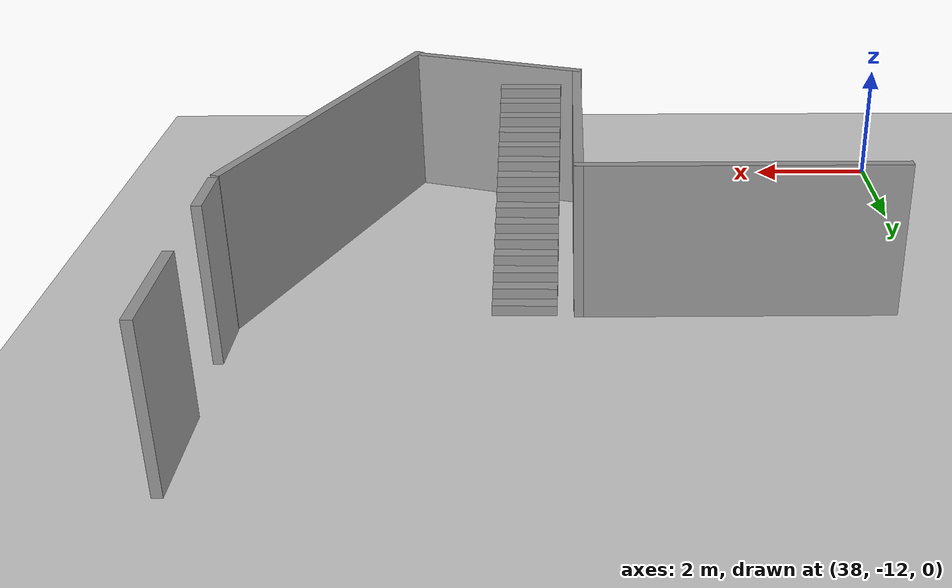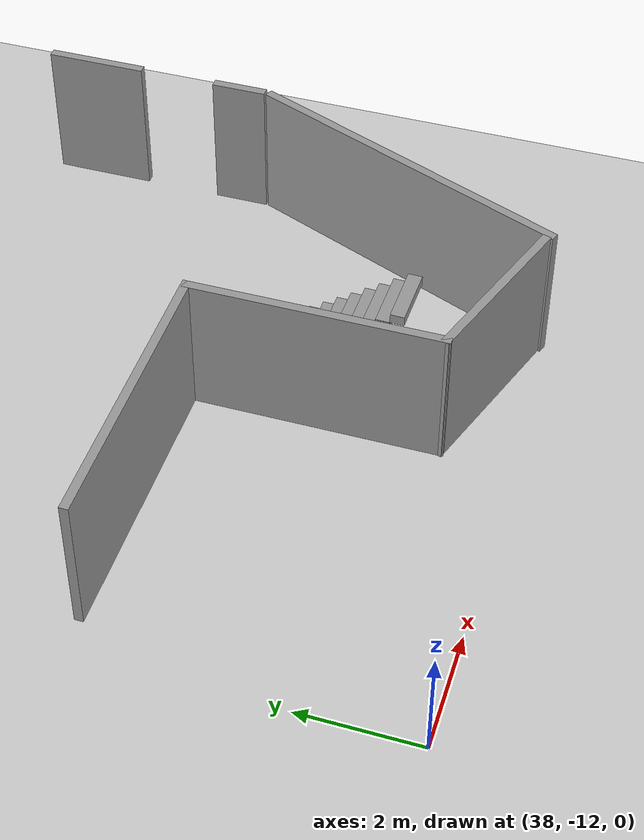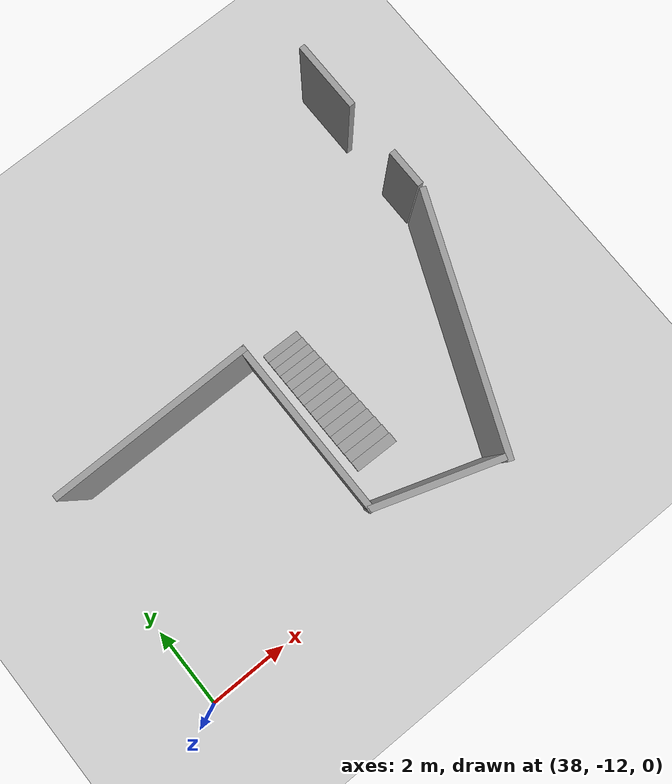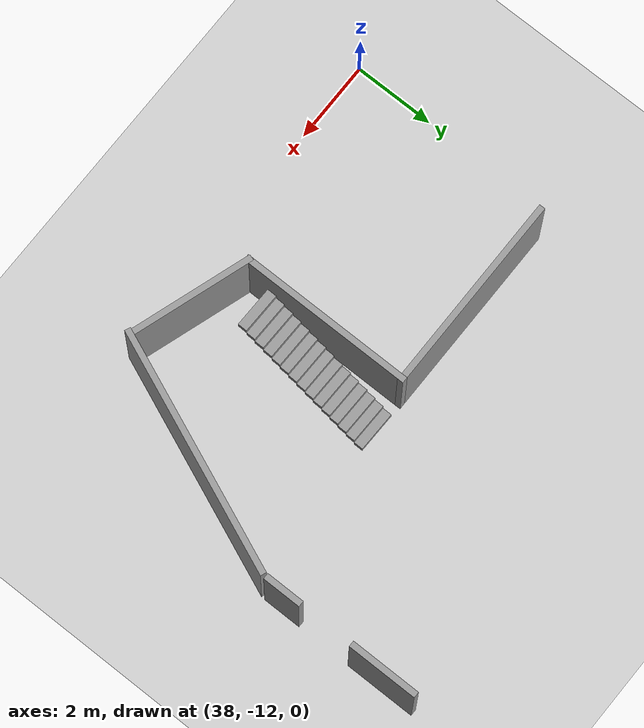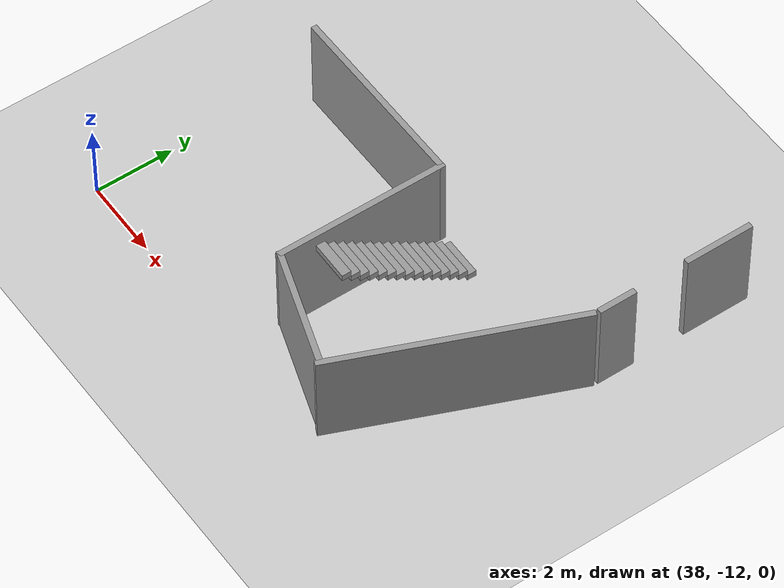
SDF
<sdf version="1.6">
 <world name="default">
  <model name="ground_plane">
   <static>1</static>
   <link name="link">
    <collision name="collision">
     <geometry><plane><normal>0 0 1</normal><size>100 100</size></plane></geometry>
     <surface><friction><ode><mu>100</mu><mu2>50</mu2></ode></friction></surface>
    </collision>
    <visual name="visual">
     <cast_shadows>0</cast_shadows>
     <geometry><plane><normal>0 0 1</normal><size>100 100</size></plane></geometry>
     <material>
      <script><uri>file://media/materials/scripts/gazebo.material</uri><name>Gazebo/Grey</name></script>
     </material>
    </visual>
   </link>
  </model>
  <model name="200A">
   <link name="Wall_141">
    <pose>3.51189 -2.33969 0 0 0 -1.96473</pose>
    <visual name="Wall_141_Visual">
     <pose>0 0 1.25 0 -0 0</pose>
     <geometry><box><size>6.096 0.15 2.5</size></box></geometry>
     <material>
      <script><uri>file://media/materials/scripts/gazebo.material</uri><name>Gazebo/Grey</name></script>
      <ambient>1 1 1 1</ambient>
      <shader type="pixel"/>
     </material>
     <meta><layer>0</layer></meta>
    </visual>
    <collision name="Wall_141_Collision">
     <pose>0 0 1.25 0 -0 0</pose>
     <geometry><box><size>6.096 0.15 2.5</size></box></geometry>
     <surface>
      <friction>
       <ode><mu>1</mu><mu2>1</mu2><fdir1>0 0 0</fdir1><slip1>0</slip1><slip2>0</slip2></ode>
       <torsional>
        <coefficient>1</coefficient>
        <patch_radius>0</patch_radius>
        <surface_radius>0</surface_radius>
        <use_patch_radius>1</use_patch_radius>
        <ode><slip>0</slip></ode>
       </torsional>
      </friction>
      <bounce><restitution_coefficient>0</restitution_coefficient><threshold>1e+06</threshold></bounce>
      <contact>
       <collide_without_contact>0</collide_without_contact>
       <collide_without_contact_bitmask>1</collide_without_contact_bitmask>
       <collide_bitmask>1</collide_bitmask>
       <ode>
        <soft_cfm>0</soft_cfm>
        <soft_erp>0.2</soft_erp>
        <kp>1e+13</kp>
        <kd>1</kd>
        <max_vel>0.01</max_vel>
        <min_depth>0</min_depth>
       </ode>
       <bullet>
        <split_impulse>1</split_impulse>
        <split_impulse_penetration_threshold>-0.01</split_impulse_penetration_threshold>
        <soft_cfm>0</soft_cfm>
        <soft_erp>0.2</soft_erp>
        <kp>1e+13</kp>
        <kd>1</kd>
       </bullet>
      </contact>
     </surface>
    </collision>
   </link>
   <link name="Wall_142">
    <pose>0.8825 -4.54916 0 0 -0 2.82195</pose>
    <visual name="Wall_142_Visual">
     <pose>0 0 1.25 0 -0 0</pose>
     <geometry><box><size>3.048 0.15 2.5</size></box></geometry>
     <material>
      <script><uri>file://media/materials/scripts/gazebo.material</uri><name>Gazebo/Grey</name></script>
      <ambient>1 1 1 1</ambient>
      <shader type="pixel"/>
     </material>
     <meta><layer>0</layer></meta>
    </visual>
    <collision name="Wall_142_Collision">
     <pose>0 0 1.25 0 -0 0</pose>
     <geometry><box><size>3.048 0.15 2.5</size></box></geometry>
     <surface>
      <friction>
       <ode><mu>1</mu><mu2>1</mu2><fdir1>0 0 0</fdir1><slip1>0</slip1><slip2>0</slip2></ode>
       <torsional>
        <coefficient>1</coefficient>
        <patch_radius>0</patch_radius>
        <surface_radius>0</surface_radius>
        <use_patch_radius>1</use_patch_radius>
        <ode><slip>0</slip></ode>
       </torsional>
      </friction>
      <bounce><restitution_coefficient>0</restitution_coefficient><threshold>1e+06</threshold></bounce>
      <contact>
       <collide_without_contact>0</collide_without_contact>
       <collide_without_contact_bitmask>1</collide_without_contact_bitmask>
       <collide_bitmask>1</collide_bitmask>
       <ode>
        <soft_cfm>0</soft_cfm>
        <soft_erp>0.2</soft_erp>
        <kp>1e+13</kp>
        <kd>1</kd>
        <max_vel>0.01</max_vel>
        <min_depth>0</min_depth>
       </ode>
       <bullet>
        <split_impulse>1</split_impulse>
        <split_impulse_penetration_threshold>-0.01</split_impulse_penetration_threshold>
        <soft_cfm>0</soft_cfm>
        <soft_erp>0.2</soft_erp>
        <kp>1e+13</kp>
        <kd>1</kd>
       </bullet>
      </contact>
     </surface>
    </collision>
   </link>
   <link name="Wall_143">
    <pose>-0.493195 -1.98532 0 0 -0 1.5708</pose>
    <visual name="Wall_143_Visual">
     <pose>0 0 1.25 0 -0 0</pose>
     <geometry><box><size>4.367 0.15 2.5</size></box></geometry>
     <material>
      <script><uri>file://media/materials/scripts/gazebo.material</uri><name>Gazebo/Grey</name></script>
      <ambient>1 1 1 1</ambient>
      <shader type="pixel"/>
     </material>
     <meta><layer>0</layer></meta>
    </visual>
    <collision name="Wall_143_Collision">
     <pose>0 0 1.25 0 -0 0</pose>
     <geometry><box><size>4.367 0.15 2.5</size></box></geometry>
     <surface>
      <friction>
       <ode><mu>1</mu><mu2>1</mu2><fdir1>0 0 0</fdir1><slip1>0</slip1><slip2>0</slip2></ode>
       <torsional>
        <coefficient>1</coefficient>
        <patch_radius>0</patch_radius>
        <surface_radius>0</surface_radius>
        <use_patch_radius>1</use_patch_radius>
        <ode><slip>0</slip></ode>
       </torsional>
      </friction>
      <bounce><restitution_coefficient>0</restitution_coefficient><threshold>1e+06</threshold></bounce>
      <contact>
       <collide_without_contact>0</collide_without_contact>
       <collide_without_contact_bitmask>1</collide_without_contact_bitmask>
       <collide_bitmask>1</collide_bitmask>
       <ode>
        <soft_cfm>0</soft_cfm>
        <soft_erp>0.2</soft_erp>
        <kp>1e+13</kp>
        <kd>1</kd>
        <max_vel>0.01</max_vel>
        <min_depth>0</min_depth>
       </ode>
       <bullet>
        <split_impulse>1</split_impulse>
        <split_impulse_penetration_threshold>-0.01</split_impulse_penetration_threshold>
        <soft_cfm>0</soft_cfm>
        <soft_erp>0.2</soft_erp>
        <kp>1e+13</kp>
        <kd>1</kd>
       </bullet>
      </contact>
     </surface>
    </collision>
   </link>
   <link name="Wall_144">
    <pose>-2.8947 0.123183 0 0 -0 3.14159</pose>
    <visual name="Wall_144_Visual">
     <pose>0 0 1.25 0 -0 0</pose>
     <geometry><box><size>4.953 0.15 2.5</size></box></geometry>
     <material>
      <script><uri>file://media/materials/scripts/gazebo.material</uri><name>Gazebo/Grey</name></script>
      <ambient>1 1 1 1</ambient>
      <shader type="pixel"/>
     </material>
     <meta><layer>0</layer></meta>
    </visual>
    <collision name="Wall_144_Collision">
     <pose>0 0 1.25 0 -0 0</pose>
     <geometry><box><size>4.953 0.15 2.5</size></box></geometry>
     <surface>
      <friction>
       <ode><mu>1</mu><mu2>1</mu2><fdir1>0 0 0</fdir1><slip1>0</slip1><slip2>0</slip2></ode>
       <torsional>
        <coefficient>1</coefficient>
        <patch_radius>0</patch_radius>
        <surface_radius>0</surface_radius>
        <use_patch_radius>1</use_patch_radius>
        <ode><slip>0</slip></ode>
       </torsional>
      </friction>
      <bounce><restitution_coefficient>0</restitution_coefficient><threshold>1e+06</threshold></bounce>
      <contact>
       <collide_without_contact>0</collide_without_contact>
       <collide_without_contact_bitmask>1</collide_without_contact_bitmask>
       <collide_bitmask>1</collide_bitmask>
       <ode>
        <soft_cfm>0</soft_cfm>
        <soft_erp>0.2</soft_erp>
        <kp>1e+13</kp>
        <kd>1</kd>
        <max_vel>0.01</max_vel>
        <min_depth>0</min_depth>
       </ode>
       <bullet>
        <split_impulse>1</split_impulse>
        <split_impulse_penetration_threshold>-0.01</split_impulse_penetration_threshold>
        <soft_cfm>0</soft_cfm>
        <soft_erp>0.2</soft_erp>
        <kp>1e+13</kp>
        <kd>1</kd>
       </bullet>
      </contact>
     </surface>
    </collision>
   </link>
   <link name="Wall_148">
    <pose>4.6838 1.01699 0 0 -0 1.5708</pose>
    <inertial>
     <inertia><ixx>0</ixx><ixy>0</ixy><ixz>0</ixz><iyy>0</iyy><iyz>0</iyz><izz>0</izz></inertia>
     <mass>0</mass>
    </inertial>
    <visual name="Wall_148_Visual">
     <pose>0 0 1.25 0 -0 0</pose>
     <geometry><box><size>0.961518 0.15 2.5</size></box></geometry>
     <material>
      <script><uri>file://media/materials/scripts/gazebo.material</uri><name>Gazebo/Grey</name></script>
      <ambient>1 1 1 1</ambient>
      <shader type="pixel"/>
     </material>
     <meta><layer>0</layer></meta>
    </visual>
    <collision name="Wall_148_Collision">
     <pose>0 0 1.25 0 -0 0</pose>
     <geometry><box><size>0.961518 0.15 2.5</size></box></geometry>
     <surface>
      <friction>
       <ode><mu>1</mu><mu2>1</mu2><fdir1>0 0 0</fdir1><slip1>0</slip1><slip2>0</slip2></ode>
       <torsional>
        <coefficient>1</coefficient>
        <patch_radius>0</patch_radius>
        <surface_radius>0</surface_radius>
        <use_patch_radius>1</use_patch_radius>
        <ode><slip>0</slip></ode>
       </torsional>
      </friction>
      <bounce><restitution_coefficient>0</restitution_coefficient><threshold>1e+06</threshold></bounce>
      <contact>
       <collide_without_contact>0</collide_without_contact>
       <collide_without_contact_bitmask>1</collide_without_contact_bitmask>
       <collide_bitmask>1</collide_bitmask>
       <ode>
        <soft_cfm>0</soft_cfm>
        <soft_erp>0.2</soft_erp>
        <kp>1e+13</kp>
        <kd>1</kd>
        <max_vel>0.01</max_vel>
        <min_depth>0</min_depth>
       </ode>
       <bullet>
        <split_impulse>1</split_impulse>
        <split_impulse_penetration_threshold>-0.01</split_impulse_penetration_threshold>
        <soft_cfm>0</soft_cfm>
        <soft_erp>0.2</soft_erp>
        <kp>1e+13</kp>
        <kd>1</kd>
       </bullet>
      </contact>
     </surface>
    </collision>
   </link>
   <link name="Wall_150">
    <pose>4.68442 3.72442 0 0 -0 1.5708</pose>
    <visual name="Wall_150_Visual">
     <pose>0 0 1.25 0 -0 0</pose>
     <geometry><box><size>1.75 0.15 2.5</size></box></geometry>
     <material>
      <script><uri>file://media/materials/scripts/gazebo.material</uri><name>Gazebo/Grey</name></script>
      <ambient>1 1 1 1</ambient>
      <shader type="pixel"/>
     </material>
     <meta><layer>0</layer></meta>
    </visual>
    <collision name="Wall_150_Collision">
     <pose>0 0 1.25 0 -0 0</pose>
     <geometry><box><size>1.75 0.15 2.5</size></box></geometry>
     <surface>
      <friction>
       <ode><mu>1</mu><mu2>1</mu2><fdir1>0 0 0</fdir1><slip1>0</slip1><slip2>0</slip2></ode>
       <torsional>
        <coefficient>1</coefficient>
        <patch_radius>0</patch_radius>
        <surface_radius>0</surface_radius>
        <use_patch_radius>1</use_patch_radius>
        <ode><slip>0</slip></ode>
       </torsional>
      </friction>
      <bounce><restitution_coefficient>0</restitution_coefficient><threshold>1e+06</threshold></bounce>
      <contact>
       <collide_without_contact>0</collide_without_contact>
       <collide_without_contact_bitmask>1</collide_without_contact_bitmask>
       <collide_bitmask>1</collide_bitmask>
       <ode>
        <soft_cfm>0</soft_cfm>
        <soft_erp>0.2</soft_erp>
        <kp>1e+13</kp>
        <kd>1</kd>
        <max_vel>0.01</max_vel>
        <min_depth>0</min_depth>
       </ode>
       <bullet>
        <split_impulse>1</split_impulse>
        <split_impulse_penetration_threshold>-0.01</split_impulse_penetration_threshold>
        <soft_cfm>0</soft_cfm>
        <soft_erp>0.2</soft_erp>
        <kp>1e+13</kp>
        <kd>1</kd>
       </bullet>
      </contact>
     </surface>
    </collision>
   </link>
   <static>1</static>
   <pose>43.9705 -6.64071 0 0 -0 0</pose>
  </model>
  <model name="Staircase_1">
   <link name="Stairs_0">
    <visual name="Stairs_0_Visual_2">
     <pose>-1.16667 -0 0.416667 0 -0 1.5708</pose>
     <geometry><box><size>1 0.233333 0.166667</size></box></geometry>
     <material>
      <script><uri>file://media/materials/scripts/gazebo.material</uri><name>Gazebo/Grey</name></script>
      <ambient>1 1 1 1</ambient>
      <shader type="pixel"/>
     </material>
     <meta><layer>0</layer></meta>
    </visual>
    <visual name="Stairs_0_Visual_3">
     <pose>-0.933333 -0 0.583333 0 -0 1.5708</pose>
     <geometry><box><size>1 0.233333 0.166667</size></box></geometry>
     <material>
      <script><uri>file://media/materials/scripts/gazebo.material</uri><name>Gazebo/Grey</name></script>
      <ambient>1 1 1 1</ambient>
      <shader type="pixel"/>
     </material>
     <meta><layer>0</layer></meta>
    </visual>
    <visual name="Stairs_0_Visual_4">
     <pose>-0.7 0 0.75 0 -0 1.5708</pose>
     <geometry><box><size>1 0.233333 0.166667</size></box></geometry>
     <material>
      <script><uri>file://media/materials/scripts/gazebo.material</uri><name>Gazebo/Grey</name></script>
      <ambient>1 1 1 1</ambient>
      <shader type="pixel"/>
     </material>
     <meta><layer>0</layer></meta>
    </visual>
    <visual name="Stairs_0_Visual_5">
     <pose>-0.466667 0 0.916667 0 -0 1.5708</pose>
     <geometry><box><size>1 0.233333 0.166667</size></box></geometry>
     <material>
      <script><uri>file://media/materials/scripts/gazebo.material</uri><name>Gazebo/Grey</name></script>
      <ambient>1 1 1 1</ambient>
      <shader type="pixel"/>
     </material>
     <meta><layer>0</layer></meta>
    </visual>
    <visual name="Stairs_0_Visual_6">
     <pose>-0.233333 0 1.08333 0 -0 1.5708</pose>
     <geometry><box><size>1 0.233333 0.166667</size></box></geometry>
     <material>
      <script><uri>file://media/materials/scripts/gazebo.material</uri><name>Gazebo/Grey</name></script>
      <ambient>1 1 1 1</ambient>
      <shader type="pixel"/>
     </material>
     <meta><layer>0</layer></meta>
    </visual>
    <visual name="Stairs_0_Visual_7">
     <pose>0 0 1.25 0 -0 1.5708</pose>
     <geometry><box><size>1 0.233333 0.166667</size></box></geometry>
     <material>
      <script><uri>file://media/materials/scripts/gazebo.material</uri><name>Gazebo/Grey</name></script>
      <ambient>1 1 1 1</ambient>
      <shader type="pixel"/>
     </material>
     <meta><layer>0</layer></meta>
    </visual>
    <visual name="Stairs_0_Visual_8">
     <pose>0.233333 0 1.41667 0 -0 1.5708</pose>
     <geometry><box><size>1 0.233333 0.166667</size></box></geometry>
     <material>
      <script><uri>file://media/materials/scripts/gazebo.material</uri><name>Gazebo/Grey</name></script>
      <ambient>1 1 1 1</ambient>
      <shader type="pixel"/>
     </material>
     <meta><layer>0</layer></meta>
    </visual>
    <visual name="Stairs_0_Visual_9">
     <pose>0.466667 0 1.58333 0 -0 1.5708</pose>
     <geometry><box><size>1 0.233333 0.166667</size></box></geometry>
     <material>
      <script><uri>file://media/materials/scripts/gazebo.material</uri><name>Gazebo/Grey</name></script>
      <ambient>1 1 1 1</ambient>
      <shader type="pixel"/>
     </material>
     <meta><layer>0</layer></meta>
    </visual>
    <visual name="Stairs_0_Visual_10">
     <pose>0.7 0 1.75 0 -0 1.5708</pose>
     <geometry><box><size>1 0.233333 0.166667</size></box></geometry>
     <material>
      <script><uri>file://media/materials/scripts/gazebo.material</uri><name>Gazebo/Grey</name></script>
      <ambient>1 1 1 1</ambient>
      <shader type="pixel"/>
     </material>
     <meta><layer>0</layer></meta>
    </visual>
    <visual name="Stairs_0_Visual_11">
     <pose>0.933334 0 1.91667 0 -0 1.5708</pose>
     <geometry><box><size>1 0.233333 0.166667</size></box></geometry>
     <material>
      <script><uri>file://media/materials/scripts/gazebo.material</uri><name>Gazebo/Grey</name></script>
      <ambient>1 1 1 1</ambient>
      <shader type="pixel"/>
     </material>
     <meta><layer>0</layer></meta>
    </visual>
    <visual name="Stairs_0_Visual_12">
     <pose>1.16667 0 2.08333 0 -0 1.5708</pose>
     <geometry><box><size>1 0.233333 0.166667</size></box></geometry>
     <material>
      <script><uri>file://media/materials/scripts/gazebo.material</uri><name>Gazebo/Grey</name></script>
      <ambient>1 1 1 1</ambient>
      <shader type="pixel"/>
     </material>
     <meta><layer>0</layer></meta>
    </visual>
    <visual name="Stairs_0_Visual_13">
     <pose>1.4 0 2.25 0 -0 1.5708</pose>
     <geometry><box><size>1 0.233333 0.166667</size></box></geometry>
     <material>
      <script><uri>file://media/materials/scripts/gazebo.material</uri><name>Gazebo/Grey</name></script>
      <ambient>1 1 1 1</ambient>
      <shader type="pixel"/>
     </material>
     <meta><layer>0</layer></meta>
    </visual>
    <visual name="Stairs_0_Visual_14">
     <pose>1.63333 0 2.41667 0 -0 1.5708</pose>
     <geometry><box><size>1 0.233333 0.166667</size></box></geometry>
     <material>
      <script><uri>file://media/materials/scripts/gazebo.material</uri><name>Gazebo/Grey</name></script>
      <ambient>1 1 1 1</ambient>
      <shader type="pixel"/>
     </material>
     <meta><layer>0</layer></meta>
    </visual>
    <visual name="Stairs_0_Visual_0">
     <pose>-1.63333 -0 0.083333 0 -0 1.5708</pose>
     <geometry><box><size>1 0.233333 0.166667</size></box></geometry>
     <material>
      <script><uri>file://media/materials/scripts/gazebo.material</uri><name>Gazebo/Grey</name></script>
      <ambient>1 1 1 1</ambient>
      <shader type="pixel"/>
     </material>
     <meta><layer>0</layer></meta>
    </visual>
    <visual name="Stairs_0_Visual_1">
     <pose>-1.4 -0 0.25 0 -0 1.5708</pose>
     <geometry><box><size>1 0.233333 0.166667</size></box></geometry>
     <material>
      <script><uri>file://media/materials/scripts/gazebo.material</uri><name>Gazebo/Grey</name></script>
      <ambient>1 1 1 1</ambient>
      <shader type="pixel"/>
     </material>
     <meta><layer>0</layer></meta>
    </visual>
    <collision name="Stairs_0_Collision_0">
     <pose>-1.63333 0 0.083333 0 -0 1.5708</pose>
     <geometry><box><size>1 0.233333 0.166667</size></box></geometry>
     <surface>
      <friction>
       <ode><mu>1</mu><mu2>1</mu2><fdir1>0 0 0</fdir1><slip1>0</slip1><slip2>0</slip2></ode>
       <torsional>
        <coefficient>1</coefficient>
        <patch_radius>0</patch_radius>
        <surface_radius>0</surface_radius>
        <use_patch_radius>1</use_patch_radius>
        <ode><slip>0</slip></ode>
       </torsional>
      </friction>
      <bounce><restitution_coefficient>0</restitution_coefficient><threshold>1e+06</threshold></bounce>
      <contact>
       <collide_without_contact>0</collide_without_contact>
       <collide_without_contact_bitmask>1</collide_without_contact_bitmask>
       <collide_bitmask>1</collide_bitmask>
       <ode>
        <soft_cfm>0</soft_cfm>
        <soft_erp>0.2</soft_erp>
        <kp>1e+13</kp>
        <kd>1</kd>
        <max_vel>0.01</max_vel>
        <min_depth>0</min_depth>
       </ode>
       <bullet>
        <split_impulse>1</split_impulse>
        <split_impulse_penetration_threshold>-0.01</split_impulse_penetration_threshold>
        <soft_cfm>0</soft_cfm>
        <soft_erp>0.2</soft_erp>
        <kp>1e+13</kp>
        <kd>1</kd>
       </bullet>
      </contact>
     </surface>
    </collision>
    <collision name="Stairs_0_Collision_1">
     <pose>-1.4 0 0.25 0 -0 1.5708</pose>
     <geometry><box><size>1 0.233333 0.166667</size></box></geometry>
     <surface>
      <friction>
       <ode><mu>1</mu><mu2>1</mu2><fdir1>0 0 0</fdir1><slip1>0</slip1><slip2>0</slip2></ode>
       <torsional>
        <coefficient>1</coefficient>
        <patch_radius>0</patch_radius>
        <surface_radius>0</surface_radius>
        <use_patch_radius>1</use_patch_radius>
        <ode><slip>0</slip></ode>
       </torsional>
      </friction>
      <bounce><restitution_coefficient>0</restitution_coefficient><threshold>1e+06</threshold></bounce>
      <contact>
       <collide_without_contact>0</collide_without_contact>
       <collide_without_contact_bitmask>1</collide_without_contact_bitmask>
       <collide_bitmask>1</collide_bitmask>
       <ode>
        <soft_cfm>0</soft_cfm>
        <soft_erp>0.2</soft_erp>
        <kp>1e+13</kp>
        <kd>1</kd>
        <max_vel>0.01</max_vel>
        <min_depth>0</min_depth>
       </ode>
       <bullet>
        <split_impulse>1</split_impulse>
        <split_impulse_penetration_threshold>-0.01</split_impulse_penetration_threshold>
        <soft_cfm>0</soft_cfm>
        <soft_erp>0.2</soft_erp>
        <kp>1e+13</kp>
        <kd>1</kd>
       </bullet>
      </contact>
     </surface>
    </collision>
    <collision name="Stairs_0_Collision_2">
     <pose>-1.16667 0 0.416667 0 -0 1.5708</pose>
     <geometry><box><size>1 0.233333 0.166667</size></box></geometry>
     <surface>
      <friction>
       <ode><mu>1</mu><mu2>1</mu2><fdir1>0 0 0</fdir1><slip1>0</slip1><slip2>0</slip2></ode>
       <torsional>
        <coefficient>1</coefficient>
        <patch_radius>0</patch_radius>
        <surface_radius>0</surface_radius>
        <use_patch_radius>1</use_patch_radius>
        <ode><slip>0</slip></ode>
       </torsional>
      </friction>
      <bounce><restitution_coefficient>0</restitution_coefficient><threshold>1e+06</threshold></bounce>
      <contact>
       <collide_without_contact>0</collide_without_contact>
       <collide_without_contact_bitmask>1</collide_without_contact_bitmask>
       <collide_bitmask>1</collide_bitmask>
       <ode>
        <soft_cfm>0</soft_cfm>
        <soft_erp>0.2</soft_erp>
        <kp>1e+13</kp>
        <kd>1</kd>
        <max_vel>0.01</max_vel>
        <min_depth>0</min_depth>
       </ode>
       <bullet>
        <split_impulse>1</split_impulse>
        <split_impulse_penetration_threshold>-0.01</split_impulse_penetration_threshold>
        <soft_cfm>0</soft_cfm>
        <soft_erp>0.2</soft_erp>
        <kp>1e+13</kp>
        <kd>1</kd>
       </bullet>
      </contact>
     </surface>
    </collision>
    <collision name="Stairs_0_Collision_3">
     <pose>-0.933333 0 0.583333 0 -0 1.5708</pose>
     <geometry><box><size>1 0.233333 0.166667</size></box></geometry>
     <surface>
      <friction>
       <ode><mu>1</mu><mu2>1</mu2><fdir1>0 0 0</fdir1><slip1>0</slip1><slip2>0</slip2></ode>
       <torsional>
        <coefficient>1</coefficient>
        <patch_radius>0</patch_radius>
        <surface_radius>0</surface_radius>
        <use_patch_radius>1</use_patch_radius>
        <ode><slip>0</slip></ode>
       </torsional>
      </friction>
      <bounce><restitution_coefficient>0</restitution_coefficient><threshold>1e+06</threshold></bounce>
      <contact>
       <collide_without_contact>0</collide_without_contact>
       <collide_without_contact_bitmask>1</collide_without_contact_bitmask>
       <collide_bitmask>1</collide_bitmask>
       <ode>
        <soft_cfm>0</soft_cfm>
        <soft_erp>0.2</soft_erp>
        <kp>1e+13</kp>
        <kd>1</kd>
        <max_vel>0.01</max_vel>
        <min_depth>0</min_depth>
       </ode>
       <bullet>
        <split_impulse>1</split_impulse>
        <split_impulse_penetration_threshold>-0.01</split_impulse_penetration_threshold>
        <soft_cfm>0</soft_cfm>
        <soft_erp>0.2</soft_erp>
        <kp>1e+13</kp>
        <kd>1</kd>
       </bullet>
      </contact>
     </surface>
    </collision>
    <collision name="Stairs_0_Collision_4">
     <pose>-0.7 0 0.75 0 -0 1.5708</pose>
     <geometry><box><size>1 0.233333 0.166667</size></box></geometry>
     <surface>
      <friction>
       <ode><mu>1</mu><mu2>1</mu2><fdir1>0 0 0</fdir1><slip1>0</slip1><slip2>0</slip2></ode>
       <torsional>
        <coefficient>1</coefficient>
        <patch_radius>0</patch_radius>
        <surface_radius>0</surface_radius>
        <use_patch_radius>1</use_patch_radius>
        <ode><slip>0</slip></ode>
       </torsional>
      </friction>
      <bounce><restitution_coefficient>0</restitution_coefficient><threshold>1e+06</threshold></bounce>
      <contact>
       <collide_without_contact>0</collide_without_contact>
       <collide_without_contact_bitmask>1</collide_without_contact_bitmask>
       <collide_bitmask>1</collide_bitmask>
       <ode>
        <soft_cfm>0</soft_cfm>
        <soft_erp>0.2</soft_erp>
        <kp>1e+13</kp>
        <kd>1</kd>
        <max_vel>0.01</max_vel>
        <min_depth>0</min_depth>
       </ode>
       <bullet>
        <split_impulse>1</split_impulse>
        <split_impulse_penetration_threshold>-0.01</split_impulse_penetration_threshold>
        <soft_cfm>0</soft_cfm>
        <soft_erp>0.2</soft_erp>
        <kp>1e+13</kp>
        <kd>1</kd>
       </bullet>
      </contact>
     </surface>
    </collision>
    <collision name="Stairs_0_Collision_5">
     <pose>-0.466667 0 0.916667 0 -0 1.5708</pose>
     <geometry><box><size>1 0.233333 0.166667</size></box></geometry>
     <surface>
      <friction>
       <ode><mu>1</mu><mu2>1</mu2><fdir1>0 0 0</fdir1><slip1>0</slip1><slip2>0</slip2></ode>
       <torsional>
        <coefficient>1</coefficient>
        <patch_radius>0</patch_radius>
        <surface_radius>0</surface_radius>
        <use_patch_radius>1</use_patch_radius>
        <ode><slip>0</slip></ode>
       </torsional>
      </friction>
      <bounce><restitution_coefficient>0</restitution_coefficient><threshold>1e+06</threshold></bounce>
      <contact>
       <collide_without_contact>0</collide_without_contact>
       <collide_without_contact_bitmask>1</collide_without_contact_bitmask>
       <collide_bitmask>1</collide_bitmask>
       <ode>
        <soft_cfm>0</soft_cfm>
        <soft_erp>0.2</soft_erp>
        <kp>1e+13</kp>
        <kd>1</kd>
        <max_vel>0.01</max_vel>
        <min_depth>0</min_depth>
       </ode>
       <bullet>
        <split_impulse>1</split_impulse>
        <split_impulse_penetration_threshold>-0.01</split_impulse_penetration_threshold>
        <soft_cfm>0</soft_cfm>
        <soft_erp>0.2</soft_erp>
        <kp>1e+13</kp>
        <kd>1</kd>
       </bullet>
      </contact>
     </surface>
    </collision>
    <collision name="Stairs_0_Collision_6">
     <pose>-0.233333 0 1.08333 0 -0 1.5708</pose>
     <geometry><box><size>1 0.233333 0.166667</size></box></geometry>
     <surface>
      <friction>
       <ode><mu>1</mu><mu2>1</mu2><fdir1>0 0 0</fdir1><slip1>0</slip1><slip2>0</slip2></ode>
       <torsional>
        <coefficient>1</coefficient>
        <patch_radius>0</patch_radius>
        <surface_radius>0</surface_radius>
        <use_patch_radius>1</use_patch_radius>
        <ode><slip>0</slip></ode>
       </torsional>
      </friction>
      <bounce><restitution_coefficient>0</restitution_coefficient><threshold>1e+06</threshold></bounce>
      <contact>
       <collide_without_contact>0</collide_without_contact>
       <collide_without_contact_bitmask>1</collide_without_contact_bitmask>
       <collide_bitmask>1</collide_bitmask>
       <ode>
        <soft_cfm>0</soft_cfm>
        <soft_erp>0.2</soft_erp>
        <kp>1e+13</kp>
        <kd>1</kd>
        <max_vel>0.01</max_vel>
        <min_depth>0</min_depth>
       </ode>
       <bullet>
        <split_impulse>1</split_impulse>
        <split_impulse_penetration_threshold>-0.01</split_impulse_penetration_threshold>
        <soft_cfm>0</soft_cfm>
        <soft_erp>0.2</soft_erp>
        <kp>1e+13</kp>
        <kd>1</kd>
       </bullet>
      </contact>
     </surface>
    </collision>
    <collision name="Stairs_0_Collision_7">
     <pose>0 0 1.25 0 -0 1.5708</pose>
     <geometry><box><size>1 0.233333 0.166667</size></box></geometry>
     <surface>
      <friction>
       <ode><mu>1</mu><mu2>1</mu2><fdir1>0 0 0</fdir1><slip1>0</slip1><slip2>0</slip2></ode>
       <torsional>
        <coefficient>1</coefficient>
        <patch_radius>0</patch_radius>
        <surface_radius>0</surface_radius>
        <use_patch_radius>1</use_patch_radius>
        <ode><slip>0</slip></ode>
       </torsional>
      </friction>
      <bounce><restitution_coefficient>0</restitution_coefficient><threshold>1e+06</threshold></bounce>
      <contact>
       <collide_without_contact>0</collide_without_contact>
       <collide_without_contact_bitmask>1</collide_without_contact_bitmask>
       <collide_bitmask>1</collide_bitmask>
       <ode>
        <soft_cfm>0</soft_cfm>
        <soft_erp>0.2</soft_erp>
        <kp>1e+13</kp>
        <kd>1</kd>
        <max_vel>0.01</max_vel>
        <min_depth>0</min_depth>
       </ode>
       <bullet>
        <split_impulse>1</split_impulse>
        <split_impulse_penetration_threshold>-0.01</split_impulse_penetration_threshold>
        <soft_cfm>0</soft_cfm>
        <soft_erp>0.2</soft_erp>
        <kp>1e+13</kp>
        <kd>1</kd>
       </bullet>
      </contact>
     </surface>
    </collision>
    <collision name="Stairs_0_Collision_8">
     <pose>0.233333 0 1.41667 0 -0 1.5708</pose>
     <geometry><box><size>1 0.233333 0.166667</size></box></geometry>
     <surface>
      <friction>
       <ode><mu>1</mu><mu2>1</mu2><fdir1>0 0 0</fdir1><slip1>0</slip1><slip2>0</slip2></ode>
       <torsional>
        <coefficient>1</coefficient>
        <patch_radius>0</patch_radius>
        <surface_radius>0</surface_radius>
        <use_patch_radius>1</use_patch_radius>
        <ode><slip>0</slip></ode>
       </torsional>
      </friction>
      <bounce><restitution_coefficient>0</restitution_coefficient><threshold>1e+06</threshold></bounce>
      <contact>
       <collide_without_contact>0</collide_without_contact>
       <collide_without_contact_bitmask>1</collide_without_contact_bitmask>
       <collide_bitmask>1</collide_bitmask>
       <ode>
        <soft_cfm>0</soft_cfm>
        <soft_erp>0.2</soft_erp>
        <kp>1e+13</kp>
        <kd>1</kd>
        <max_vel>0.01</max_vel>
        <min_depth>0</min_depth>
       </ode>
       <bullet>
        <split_impulse>1</split_impulse>
        <split_impulse_penetration_threshold>-0.01</split_impulse_penetration_threshold>
        <soft_cfm>0</soft_cfm>
        <soft_erp>0.2</soft_erp>
        <kp>1e+13</kp>
        <kd>1</kd>
       </bullet>
      </contact>
     </surface>
    </collision>
    <collision name="Stairs_0_Collision_9">
     <pose>0.466667 0 1.58333 0 -0 1.5708</pose>
     <geometry><box><size>1 0.233333 0.166667</size></box></geometry>
     <surface>
      <friction>
       <ode><mu>1</mu><mu2>1</mu2><fdir1>0 0 0</fdir1><slip1>0</slip1><slip2>0</slip2></ode>
       <torsional>
        <coefficient>1</coefficient>
        <patch_radius>0</patch_radius>
        <surface_radius>0</surface_radius>
        <use_patch_radius>1</use_patch_radius>
        <ode><slip>0</slip></ode>
       </torsional>
      </friction>
      <bounce><restitution_coefficient>0</restitution_coefficient><threshold>1e+06</threshold></bounce>
      <contact>
       <collide_without_contact>0</collide_without_contact>
       <collide_without_contact_bitmask>1</collide_without_contact_bitmask>
       <collide_bitmask>1</collide_bitmask>
       <ode>
        <soft_cfm>0</soft_cfm>
        <soft_erp>0.2</soft_erp>
        <kp>1e+13</kp>
        <kd>1</kd>
        <max_vel>0.01</max_vel>
        <min_depth>0</min_depth>
       </ode>
       <bullet>
        <split_impulse>1</split_impulse>
        <split_impulse_penetration_threshold>-0.01</split_impulse_penetration_threshold>
        <soft_cfm>0</soft_cfm>
        <soft_erp>0.2</soft_erp>
        <kp>1e+13</kp>
        <kd>1</kd>
       </bullet>
      </contact>
     </surface>
    </collision>
    <collision name="Stairs_0_Collision_10">
     <pose>0.7 0 1.75 0 -0 1.5708</pose>
     <geometry><box><size>1 0.233333 0.166667</size></box></geometry>
     <surface>
      <friction>
       <ode><mu>1</mu><mu2>1</mu2><fdir1>0 0 0</fdir1><slip1>0</slip1><slip2>0</slip2></ode>
       <torsional>
        <coefficient>1</coefficient>
        <patch_radius>0</patch_radius>
        <surface_radius>0</surface_radius>
        <use_patch_radius>1</use_patch_radius>
        <ode><slip>0</slip></ode>
       </torsional>
      </friction>
      <bounce><restitution_coefficient>0</restitution_coefficient><threshold>1e+06</threshold></bounce>
      <contact>
       <collide_without_contact>0</collide_without_contact>
       <collide_without_contact_bitmask>1</collide_without_contact_bitmask>
       <collide_bitmask>1</collide_bitmask>
       <ode>
        <soft_cfm>0</soft_cfm>
        <soft_erp>0.2</soft_erp>
        <kp>1e+13</kp>
        <kd>1</kd>
        <max_vel>0.01</max_vel>
        <min_depth>0</min_depth>
       </ode>
       <bullet>
        <split_impulse>1</split_impulse>
        <split_impulse_penetration_threshold>-0.01</split_impulse_penetration_threshold>
        <soft_cfm>0</soft_cfm>
        <soft_erp>0.2</soft_erp>
        <kp>1e+13</kp>
        <kd>1</kd>
       </bullet>
      </contact>
     </surface>
    </collision>
    <collision name="Stairs_0_Collision_11">
     <pose>0.933334 0 1.91667 0 -0 1.5708</pose>
     <geometry><box><size>1 0.233333 0.166667</size></box></geometry>
     <surface>
      <friction>
       <ode><mu>1</mu><mu2>1</mu2><fdir1>0 0 0</fdir1><slip1>0</slip1><slip2>0</slip2></ode>
       <torsional>
        <coefficient>1</coefficient>
        <patch_radius>0</patch_radius>
        <surface_radius>0</surface_radius>
        <use_patch_radius>1</use_patch_radius>
        <ode><slip>0</slip></ode>
       </torsional>
      </friction>
      <bounce><restitution_coefficient>0</restitution_coefficient><threshold>1e+06</threshold></bounce>
      <contact>
       <collide_without_contact>0</collide_without_contact>
       <collide_without_contact_bitmask>1</collide_without_contact_bitmask>
       <collide_bitmask>1</collide_bitmask>
       <ode>
        <soft_cfm>0</soft_cfm>
        <soft_erp>0.2</soft_erp>
        <kp>1e+13</kp>
        <kd>1</kd>
        <max_vel>0.01</max_vel>
        <min_depth>0</min_depth>
       </ode>
       <bullet>
        <split_impulse>1</split_impulse>
        <split_impulse_penetration_threshold>-0.01</split_impulse_penetration_threshold>
        <soft_cfm>0</soft_cfm>
        <soft_erp>0.2</soft_erp>
        <kp>1e+13</kp>
        <kd>1</kd>
       </bullet>
      </contact>
     </surface>
    </collision>
    <collision name="Stairs_0_Collision_12">
     <pose>1.16667 0 2.08333 0 -0 1.5708</pose>
     <geometry><box><size>1 0.233333 0.166667</size></box></geometry>
     <surface>
      <friction>
       <ode><mu>1</mu><mu2>1</mu2><fdir1>0 0 0</fdir1><slip1>0</slip1><slip2>0</slip2></ode>
       <torsional>
        <coefficient>1</coefficient>
        <patch_radius>0</patch_radius>
        <surface_radius>0</surface_radius>
        <use_patch_radius>1</use_patch_radius>
        <ode><slip>0</slip></ode>
       </torsional>
      </friction>
      <bounce><restitution_coefficient>0</restitution_coefficient><threshold>1e+06</threshold></bounce>
      <contact>
       <collide_without_contact>0</collide_without_contact>
       <collide_without_contact_bitmask>1</collide_without_contact_bitmask>
       <collide_bitmask>1</collide_bitmask>
       <ode>
        <soft_cfm>0</soft_cfm>
        <soft_erp>0.2</soft_erp>
        <kp>1e+13</kp>
        <kd>1</kd>
        <max_vel>0.01</max_vel>
        <min_depth>0</min_depth>
       </ode>
       <bullet>
        <split_impulse>1</split_impulse>
        <split_impulse_penetration_threshold>-0.01</split_impulse_penetration_threshold>
        <soft_cfm>0</soft_cfm>
        <soft_erp>0.2</soft_erp>
        <kp>1e+13</kp>
        <kd>1</kd>
       </bullet>
      </contact>
     </surface>
    </collision>
    <collision name="Stairs_0_Collision_13">
     <pose>1.4 0 2.25 0 -0 1.5708</pose>
     <geometry><box><size>1 0.233333 0.166667</size></box></geometry>
     <surface>
      <friction>
       <ode><mu>1</mu><mu2>1</mu2><fdir1>0 0 0</fdir1><slip1>0</slip1><slip2>0</slip2></ode>
       <torsional>
        <coefficient>1</coefficient>
        <patch_radius>0</patch_radius>
        <surface_radius>0</surface_radius>
        <use_patch_radius>1</use_patch_radius>
        <ode><slip>0</slip></ode>
       </torsional>
      </friction>
      <bounce><restitution_coefficient>0</restitution_coefficient><threshold>1e+06</threshold></bounce>
      <contact>
       <collide_without_contact>0</collide_without_contact>
       <collide_without_contact_bitmask>1</collide_without_contact_bitmask>
       <collide_bitmask>1</collide_bitmask>
       <ode>
        <soft_cfm>0</soft_cfm>
        <soft_erp>0.2</soft_erp>
        <kp>1e+13</kp>
        <kd>1</kd>
        <max_vel>0.01</max_vel>
        <min_depth>0</min_depth>
       </ode>
       <bullet>
        <split_impulse>1</split_impulse>
        <split_impulse_penetration_threshold>-0.01</split_impulse_penetration_threshold>
        <soft_cfm>0</soft_cfm>
        <soft_erp>0.2</soft_erp>
        <kp>1e+13</kp>
        <kd>1</kd>
       </bullet>
      </contact>
     </surface>
    </collision>
    <collision name="Stairs_0_Collision_14">
     <pose>1.63333 0 2.41667 0 -0 1.5708</pose>
     <geometry><box><size>1 0.233333 0.166667</size></box></geometry>
     <surface>
      <friction>
       <ode><mu>1</mu><mu2>1</mu2><fdir1>0 0 0</fdir1><slip1>0</slip1><slip2>0</slip2></ode>
       <torsional>
        <coefficient>1</coefficient>
        <patch_radius>0</patch_radius>
        <surface_radius>0</surface_radius>
        <use_patch_radius>1</use_patch_radius>
        <ode><slip>0</slip></ode>
       </torsional>
      </friction>
      <bounce><restitution_coefficient>0</restitution_coefficient><threshold>1e+06</threshold></bounce>
      <contact>
       <collide_without_contact>0</collide_without_contact>
       <collide_without_contact_bitmask>1</collide_without_contact_bitmask>
       <collide_bitmask>1</collide_bitmask>
       <ode>
        <soft_cfm>0</soft_cfm>
        <soft_erp>0.2</soft_erp>
        <kp>1e+13</kp>
        <kd>1</kd>
        <max_vel>0.01</max_vel>
        <min_depth>0</min_depth>
       </ode>
       <bullet>
        <split_impulse>1</split_impulse>
        <split_impulse_penetration_threshold>-0.01</split_impulse_penetration_threshold>
        <soft_cfm>0</soft_cfm>
        <soft_erp>0.2</soft_erp>
        <kp>1e+13</kp>
        <kd>1</kd>
       </bullet>
      </contact>
     </surface>
    </collision>
   </link>
   <static>1</static>
   <pose>44.2764 -8.24936 0 0 0 -1.58827</pose>
  </model>
 </world>
</sdf>
